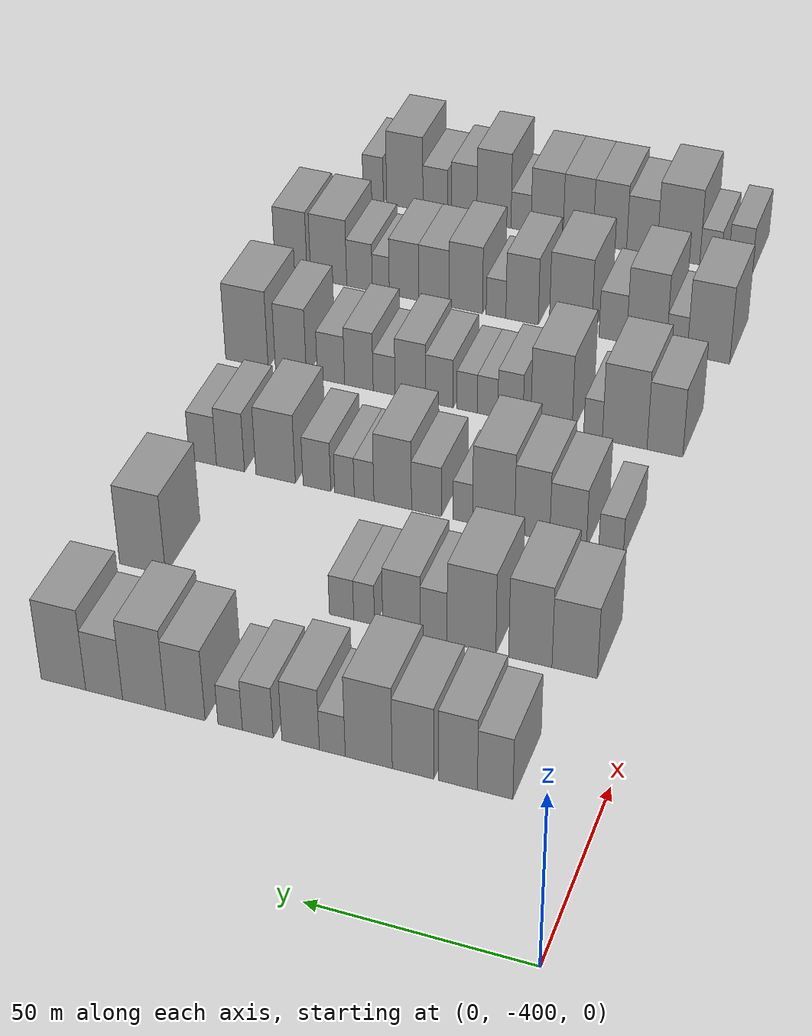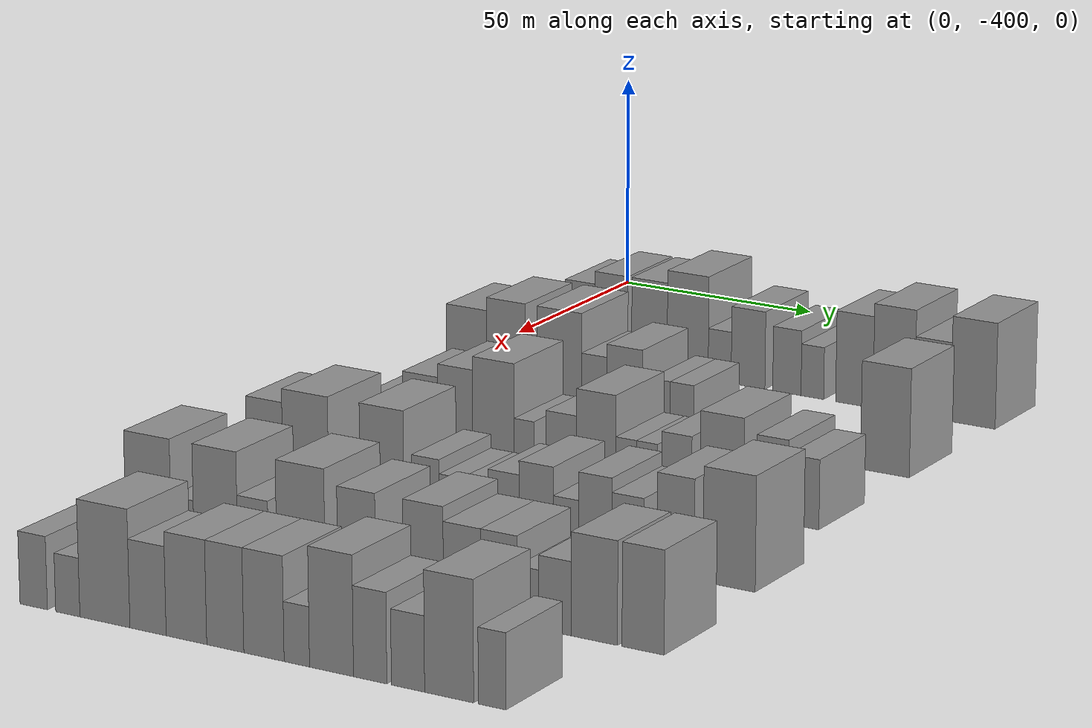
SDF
<sdf version="1.6">
 <world name="default">
  <model name="building_29">
   <static>1</static>
   <pose>50.0000 -377.5386 0 0.000000 0.000000 0.000000</pose>
   <link name="link">
    <pose>0 0 9.00 0 0 0</pose>
    <collision name="collision"><geometry><box><size>20.0000 7.8305 18.0000</size></box></geometry></collision>
    <visual name="visual">
     <cast_shadows>0</cast_shadows>
     <geometry><box><size>20.0000 7.8305 18.0000</size></box></geometry>
     <material>
      <script>
       <uri>model://grey_wall/materials/scripts</uri>
       <uri>model://grey_wall/materials/textures</uri>
       <name>vrc/grey_wall</name>
      </script>
     </material>
    </visual>
   </link>
  </model>
  <model name="building_30">
   <static>1</static>
   <pose>50.0000 -369.2636 0 0.000000 0.000000 0.000000</pose>
   <link name="link">
    <pose>0 0 10.50 0 0 0</pose>
    <collision name="collision"><geometry><box><size>20.0000 8.7196 21.0000</size></box></geometry></collision>
    <visual name="visual">
     <cast_shadows>0</cast_shadows>
     <geometry><box><size>20.0000 8.7196 21.0000</size></box></geometry>
     <material>
      <script>
       <uri>model://grey_wall/materials/scripts</uri>
       <uri>model://grey_wall/materials/textures</uri>
       <name>vrc/grey_wall</name>
      </script>
     </material>
    </visual>
   </link>
  </model>
  <model name="building_31">
   <static>1</static>
   <pose>50.0000 -359.2427 0 0.000000 0.000000 0.000000</pose>
   <link name="link">
    <pose>0 0 10.50 0 0 0</pose>
    <collision name="collision"><geometry><box><size>20.0000 9.3222 21.0000</size></box></geometry></collision>
    <visual name="visual">
     <cast_shadows>0</cast_shadows>
     <geometry><box><size>20.0000 9.3222 21.0000</size></box></geometry>
     <material>
      <script>
       <uri>model://grey_wall/materials/scripts</uri>
       <uri>model://grey_wall/materials/textures</uri>
       <name>vrc/grey_wall</name>
      </script>
     </material>
    </visual>
   </link>
  </model>
  <model name="building_32">
   <static>1</static>
   <pose>50.0000 -349.2509 0 0.000000 0.000000 0.000000</pose>
   <link name="link">
    <pose>0 0 12.00 0 0 0</pose>
    <collision name="collision"><geometry><box><size>20.0000 10.6614 24.0000</size></box></geometry></collision>
    <visual name="visual">
     <cast_shadows>0</cast_shadows>
     <geometry><box><size>20.0000 10.6614 24.0000</size></box></geometry>
     <material>
      <script>
       <uri>model://grey_wall/materials/scripts</uri>
       <uri>model://grey_wall/materials/textures</uri>
       <name>vrc/grey_wall</name>
      </script>
     </material>
    </visual>
   </link>
  </model>
  <model name="building_33">
   <static>1</static>
   <pose>50.0000 -340.9512 0 0.000000 0.000000 0.000000</pose>
   <link name="link">
    <pose>0 0 6.00 0 0 0</pose>
    <collision name="collision"><geometry><box><size>20.0000 5.9378 12.0000</size></box></geometry></collision>
    <visual name="visual">
     <cast_shadows>0</cast_shadows>
     <geometry><box><size>20.0000 5.9378 12.0000</size></box></geometry>
     <material>
      <script>
       <uri>model://grey_wall/materials/scripts</uri>
       <uri>model://grey_wall/materials/textures</uri>
       <name>vrc/grey_wall</name>
      </script>
     </material>
    </visual>
   </link>
  </model>
  <model name="building_34">
   <static>1</static>
   <pose>50.0000 -333.6593 0 0.000000 0.000000 0.000000</pose>
   <link name="link">
    <pose>0 0 9.00 0 0 0</pose>
    <collision name="collision"><geometry><box><size>20.0000 8.6461 18.0000</size></box></geometry></collision>
    <visual name="visual">
     <cast_shadows>0</cast_shadows>
     <geometry><box><size>20.0000 8.6461 18.0000</size></box></geometry>
     <material>
      <script>
       <uri>model://grey_wall/materials/scripts</uri>
       <uri>model://grey_wall/materials/textures</uri>
       <name>vrc/grey_wall</name>
      </script>
     </material>
    </visual>
   </link>
  </model>
  <model name="building_35">
   <static>1</static>
   <pose>50.0000 -323.7536 0 0.000000 0.000000 0.000000</pose>
   <link name="link">
    <pose>0 0 7.50 0 0 0</pose>
    <collision name="collision"><geometry><box><size>20.0000 7.1653 15.0000</size></box></geometry></collision>
    <visual name="visual">
     <cast_shadows>0</cast_shadows>
     <geometry><box><size>20.0000 7.1653 15.0000</size></box></geometry>
     <material>
      <script>
       <uri>model://grey_wall/materials/scripts</uri>
       <uri>model://grey_wall/materials/textures</uri>
       <name>vrc/grey_wall</name>
      </script>
     </material>
    </visual>
   </link>
  </model>
  <model name="building_36">
   <static>1</static>
   <pose>50.0000 -317.3098 0 0.000000 0.000000 0.000000</pose>
   <link name="link">
    <pose>0 0 6.00 0 0 0</pose>
    <collision name="collision"><geometry><box><size>20.0000 5.7222 12.0000</size></box></geometry></collision>
    <visual name="visual">
     <cast_shadows>0</cast_shadows>
     <geometry><box><size>20.0000 5.7222 12.0000</size></box></geometry>
     <material>
      <script>
       <uri>model://grey_wall/materials/scripts</uri>
       <uri>model://grey_wall/materials/textures</uri>
       <name>vrc/grey_wall</name>
      </script>
     </material>
    </visual>
   </link>
  </model>
  <model name="building_37">
   <static>1</static>
   <pose>50.0000 -306.7887 0 0.000000 0.000000 0.000000</pose>
   <link name="link">
    <pose>0 0 10.50 0 0 0</pose>
    <collision name="collision"><geometry><box><size>20.0000 9.3200 21.0000</size></box></geometry></collision>
    <visual name="visual">
     <cast_shadows>0</cast_shadows>
     <geometry><box><size>20.0000 9.3200 21.0000</size></box></geometry>
     <material>
      <script>
       <uri>model://grey_wall/materials/scripts</uri>
       <uri>model://grey_wall/materials/textures</uri>
       <name>vrc/grey_wall</name>
      </script>
     </material>
    </visual>
   </link>
  </model>
  <model name="building_38">
   <static>1</static>
   <pose>50.0000 -296.9839 0 0.000000 0.000000 0.000000</pose>
   <link name="link">
    <pose>0 0 12.00 0 0 0</pose>
    <collision name="collision"><geometry><box><size>20.0000 10.2897 24.0000</size></box></geometry></collision>
    <visual name="visual">
     <cast_shadows>0</cast_shadows>
     <geometry><box><size>20.0000 10.2897 24.0000</size></box></geometry>
     <material>
      <script>
       <uri>model://grey_wall/materials/scripts</uri>
       <uri>model://grey_wall/materials/textures</uri>
       <name>vrc/grey_wall</name>
      </script>
     </material>
    </visual>
   </link>
  </model>
  <model name="building_39">
   <static>1</static>
   <pose>50.0000 -287.4079 0 0.000000 0.000000 0.000000</pose>
   <link name="link">
    <pose>0 0 9.00 0 0 0</pose>
    <collision name="collision"><geometry><box><size>20.0000 8.8624 18.0000</size></box></geometry></collision>
    <visual name="visual">
     <cast_shadows>0</cast_shadows>
     <geometry><box><size>20.0000 8.8624 18.0000</size></box></geometry>
     <material>
      <script>
       <uri>model://grey_wall/materials/scripts</uri>
       <uri>model://grey_wall/materials/textures</uri>
       <name>vrc/grey_wall</name>
      </script>
     </material>
    </visual>
   </link>
  </model>
  <model name="building_40">
   <static>1</static>
   <pose>50.0000 -277.5748 0 0.000000 0.000000 0.000000</pose>
   <link name="link">
    <pose>0 0 12.00 0 0 0</pose>
    <collision name="collision"><geometry><box><size>20.0000 10.8038 24.0000</size></box></geometry></collision>
    <visual name="visual">
     <cast_shadows>0</cast_shadows>
     <geometry><box><size>20.0000 10.8038 24.0000</size></box></geometry>
     <material>
      <script>
       <uri>model://grey_wall/materials/scripts</uri>
       <uri>model://grey_wall/materials/textures</uri>
       <name>vrc/grey_wall</name>
      </script>
     </material>
    </visual>
   </link>
  </model>
  <model name="building_172">
   <static>1</static>
   <pose>90.0000 -382.9959 0 0.000000 0.000000 0.000000</pose>
   <link name="link">
    <pose>0 0 10.50 0 0 0</pose>
    <collision name="collision"><geometry><box><size>20.0000 10.4890 21.0000</size></box></geometry></collision>
    <visual name="visual">
     <cast_shadows>0</cast_shadows>
     <geometry><box><size>20.0000 10.4890 21.0000</size></box></geometry>
     <material>
      <script>
       <uri>model://grey_wall/materials/scripts</uri>
       <uri>model://grey_wall/materials/textures</uri>
       <name>vrc/grey_wall</name>
      </script>
     </material>
    </visual>
   </link>
  </model>
  <model name="building_173">
   <static>1</static>
   <pose>90.0000 -372.7026 0 0.000000 0.000000 0.000000</pose>
   <link name="link">
    <pose>0 0 12.00 0 0 0</pose>
    <collision name="collision"><geometry><box><size>20.0000 10.0975 24.0000</size></box></geometry></collision>
    <visual name="visual">
     <cast_shadows>0</cast_shadows>
     <geometry><box><size>20.0000 10.0975 24.0000</size></box></geometry>
     <material>
      <script>
       <uri>model://grey_wall/materials/scripts</uri>
       <uri>model://grey_wall/materials/textures</uri>
       <name>vrc/grey_wall</name>
      </script>
     </material>
    </visual>
   </link>
  </model>
  <model name="building_174">
   <static>1</static>
   <pose>90.0000 -358.9233 0 0.000000 0.000000 0.000000</pose>
   <link name="link">
    <pose>0 0 12.00 0 0 0</pose>
    <collision name="collision"><geometry><box><size>20.0000 11.4611 24.0000</size></box></geometry></collision>
    <visual name="visual">
     <cast_shadows>0</cast_shadows>
     <geometry><box><size>20.0000 11.4611 24.0000</size></box></geometry>
     <material>
      <script>
       <uri>model://grey_wall/materials/scripts</uri>
       <uri>model://grey_wall/materials/textures</uri>
       <name>vrc/grey_wall</name>
      </script>
     </material>
    </visual>
   </link>
  </model>
  <model name="building_175">
   <static>1</static>
   <pose>90.0000 -349.9924 0 0.000000 0.000000 0.000000</pose>
   <link name="link">
    <pose>0 0 7.50 0 0 0</pose>
    <collision name="collision"><geometry><box><size>20.0000 6.4006 15.0000</size></box></geometry></collision>
    <visual name="visual">
     <cast_shadows>0</cast_shadows>
     <geometry><box><size>20.0000 6.4006 15.0000</size></box></geometry>
     <material>
      <script>
       <uri>model://grey_wall/materials/scripts</uri>
       <uri>model://grey_wall/materials/textures</uri>
       <name>vrc/grey_wall</name>
      </script>
     </material>
    </visual>
   </link>
  </model>
  <model name="building_176">
   <static>1</static>
   <pose>90.0000 -342.3059 0 0.000000 0.000000 0.000000</pose>
   <link name="link">
    <pose>0 0 9.00 0 0 0</pose>
    <collision name="collision"><geometry><box><size>20.0000 8.9725 18.0000</size></box></geometry></collision>
    <visual name="visual">
     <cast_shadows>0</cast_shadows>
     <geometry><box><size>20.0000 8.9725 18.0000</size></box></geometry>
     <material>
      <script>
       <uri>model://grey_wall/materials/scripts</uri>
       <uri>model://grey_wall/materials/textures</uri>
       <name>vrc/grey_wall</name>
      </script>
     </material>
    </visual>
   </link>
  </model>
  <model name="building_177">
   <static>1</static>
   <pose>90.0000 -333.3131 0 0.000000 0.000000 0.000000</pose>
   <link name="link">
    <pose>0 0 6.00 0 0 0</pose>
    <collision name="collision"><geometry><box><size>20.0000 5.0131 12.0000</size></box></geometry></collision>
    <visual name="visual">
     <cast_shadows>0</cast_shadows>
     <geometry><box><size>20.0000 5.0131 12.0000</size></box></geometry>
     <material>
      <script>
       <uri>model://grey_wall/materials/scripts</uri>
       <uri>model://grey_wall/materials/textures</uri>
       <name>vrc/grey_wall</name>
      </script>
     </material>
    </visual>
   </link>
  </model>
  <model name="building_178">
   <static>1</static>
   <pose>90.0000 -327.8650 0 0.000000 0.000000 0.000000</pose>
   <link name="link">
    <pose>0 0 6.00 0 0 0</pose>
    <collision name="collision"><geometry><box><size>20.0000 5.8831 12.0000</size></box></geometry></collision>
    <visual name="visual">
     <cast_shadows>0</cast_shadows>
     <geometry><box><size>20.0000 5.8831 12.0000</size></box></geometry>
     <material>
      <script>
       <uri>model://grey_wall/materials/scripts</uri>
       <uri>model://grey_wall/materials/textures</uri>
       <name>vrc/grey_wall</name>
      </script>
     </material>
    </visual>
   </link>
  </model>
  <model name="building_179">
   <static>1</static>
   <pose>90.0000 -278.4819 0 0.000000 0.000000 0.000000</pose>
   <link name="link">
    <pose>0 0 12.00 0 0 0</pose>
    <collision name="collision"><geometry><box><size>20.0000 11.6277 24.0000</size></box></geometry></collision>
    <visual name="visual">
     <cast_shadows>0</cast_shadows>
     <geometry><box><size>20.0000 11.6277 24.0000</size></box></geometry>
     <material>
      <script>
       <uri>model://grey_wall/materials/scripts</uri>
       <uri>model://grey_wall/materials/textures</uri>
       <name>vrc/grey_wall</name>
      </script>
     </material>
    </visual>
   </link>
  </model>
  <model name="building_308">
   <static>1</static>
   <pose>130.0000 -379.8751 0 0.000000 0.000000 0.000000</pose>
   <link name="link">
    <pose>0 0 6.00 0 0 0</pose>
    <collision name="collision"><geometry><box><size>20.0000 5.9608 12.0000</size></box></geometry></collision>
    <visual name="visual">
     <cast_shadows>0</cast_shadows>
     <geometry><box><size>20.0000 5.9608 12.0000</size></box></geometry>
     <material>
      <script>
       <uri>model://grey_wall/materials/scripts</uri>
       <uri>model://grey_wall/materials/textures</uri>
       <name>vrc/grey_wall</name>
      </script>
     </material>
    </visual>
   </link>
  </model>
  <model name="building_309">
   <static>1</static>
   <pose>130.0000 -369.4111 0 0.000000 0.000000 0.000000</pose>
   <link name="link">
    <pose>0 0 9.00 0 0 0</pose>
    <collision name="collision"><geometry><box><size>20.0000 8.9671 18.0000</size></box></geometry></collision>
    <visual name="visual">
     <cast_shadows>0</cast_shadows>
     <geometry><box><size>20.0000 8.9671 18.0000</size></box></geometry>
     <material>
      <script>
       <uri>model://grey_wall/materials/scripts</uri>
       <uri>model://grey_wall/materials/textures</uri>
       <name>vrc/grey_wall</name>
      </script>
     </material>
    </visual>
   </link>
  </model>
  <model name="building_310">
   <static>1</static>
   <pose>130.0000 -360.5963 0 0.000000 0.000000 0.000000</pose>
   <link name="link">
    <pose>0 0 10.50 0 0 0</pose>
    <collision name="collision"><geometry><box><size>20.0000 8.6624 21.0000</size></box></geometry></collision>
    <visual name="visual">
     <cast_shadows>0</cast_shadows>
     <geometry><box><size>20.0000 8.6624 21.0000</size></box></geometry>
     <material>
      <script>
       <uri>model://grey_wall/materials/scripts</uri>
       <uri>model://grey_wall/materials/textures</uri>
       <name>vrc/grey_wall</name>
      </script>
     </material>
    </visual>
   </link>
  </model>
  <model name="building_311">
   <static>1</static>
   <pose>130.0000 -351.0551 0 0.000000 0.000000 0.000000</pose>
   <link name="link">
    <pose>0 0 12.00 0 0 0</pose>
    <collision name="collision"><geometry><box><size>20.0000 10.4200 24.0000</size></box></geometry></collision>
    <visual name="visual">
     <cast_shadows>0</cast_shadows>
     <geometry><box><size>20.0000 10.4200 24.0000</size></box></geometry>
     <material>
      <script>
       <uri>model://grey_wall/materials/scripts</uri>
       <uri>model://grey_wall/materials/textures</uri>
       <name>vrc/grey_wall</name>
      </script>
     </material>
    </visual>
   </link>
  </model>
  <model name="building_312">
   <static>1</static>
   <pose>130.0000 -343.4131 0 0.000000 0.000000 0.000000</pose>
   <link name="link">
    <pose>0 0 6.00 0 0 0</pose>
    <collision name="collision"><geometry><box><size>20.0000 4.8642 12.0000</size></box></geometry></collision>
    <visual name="visual">
     <cast_shadows>0</cast_shadows>
     <geometry><box><size>20.0000 4.8642 12.0000</size></box></geometry>
     <material>
      <script>
       <uri>model://grey_wall/materials/scripts</uri>
       <uri>model://grey_wall/materials/textures</uri>
       <name>vrc/grey_wall</name>
      </script>
     </material>
    </visual>
   </link>
  </model>
  <model name="building_313">
   <static>1</static>
   <pose>130.0000 -334.2361 0 0.000000 0.000000 0.000000</pose>
   <link name="link">
    <pose>0 0 7.50 0 0 0</pose>
    <collision name="collision"><geometry><box><size>20.0000 7.4897 15.0000</size></box></geometry></collision>
    <visual name="visual">
     <cast_shadows>0</cast_shadows>
     <geometry><box><size>20.0000 7.4897 15.0000</size></box></geometry>
     <material>
      <script>
       <uri>model://grey_wall/materials/scripts</uri>
       <uri>model://grey_wall/materials/textures</uri>
       <name>vrc/grey_wall</name>
      </script>
     </material>
    </visual>
   </link>
  </model>
  <model name="building_314">
   <static>1</static>
   <pose>130.0000 -325.7147 0 0.000000 0.000000 0.000000</pose>
   <link name="link">
    <pose>0 0 10.50 0 0 0</pose>
    <collision name="collision"><geometry><box><size>20.0000 9.5531 21.0000</size></box></geometry></collision>
    <visual name="visual">
     <cast_shadows>0</cast_shadows>
     <geometry><box><size>20.0000 9.5531 21.0000</size></box></geometry>
     <material>
      <script>
       <uri>model://grey_wall/materials/scripts</uri>
       <uri>model://grey_wall/materials/textures</uri>
       <name>vrc/grey_wall</name>
      </script>
     </material>
    </visual>
   </link>
  </model>
  <model name="building_315">
   <static>1</static>
   <pose>130.0000 -318.4172 0 0.000000 0.000000 0.000000</pose>
   <link name="link">
    <pose>0 0 6.00 0 0 0</pose>
    <collision name="collision"><geometry><box><size>20.0000 5.0419 12.0000</size></box></geometry></collision>
    <visual name="visual">
     <cast_shadows>0</cast_shadows>
     <geometry><box><size>20.0000 5.0419 12.0000</size></box></geometry>
     <material>
      <script>
       <uri>model://grey_wall/materials/scripts</uri>
       <uri>model://grey_wall/materials/textures</uri>
       <name>vrc/grey_wall</name>
      </script>
     </material>
    </visual>
   </link>
  </model>
  <model name="building_316">
   <static>1</static>
   <pose>130.0000 -313.3897 0 0.000000 0.000000 0.000000</pose>
   <link name="link">
    <pose>0 0 6.00 0 0 0</pose>
    <collision name="collision"><geometry><box><size>20.0000 5.0132 12.0000</size></box></geometry></collision>
    <visual name="visual">
     <cast_shadows>0</cast_shadows>
     <geometry><box><size>20.0000 5.0132 12.0000</size></box></geometry>
     <material>
      <script>
       <uri>model://grey_wall/materials/scripts</uri>
       <uri>model://grey_wall/materials/textures</uri>
       <name>vrc/grey_wall</name>
      </script>
     </material>
    </visual>
   </link>
  </model>
  <model name="building_317">
   <static>1</static>
   <pose>130.0000 -306.3028 0 0.000000 0.000000 0.000000</pose>
   <link name="link">
    <pose>0 0 7.50 0 0 0</pose>
    <collision name="collision"><geometry><box><size>20.0000 7.1605 15.0000</size></box></geometry></collision>
    <visual name="visual">
     <cast_shadows>0</cast_shadows>
     <geometry><box><size>20.0000 7.1605 15.0000</size></box></geometry>
     <material>
      <script>
       <uri>model://grey_wall/materials/scripts</uri>
       <uri>model://grey_wall/materials/textures</uri>
       <name>vrc/grey_wall</name>
      </script>
     </material>
    </visual>
   </link>
  </model>
  <model name="building_318">
   <static>1</static>
   <pose>130.0000 -295.5775 0 0.000000 0.000000 0.000000</pose>
   <link name="link">
    <pose>0 0 10.50 0 0 0</pose>
    <collision name="collision"><geometry><box><size>20.0000 10.2901 21.0000</size></box></geometry></collision>
    <visual name="visual">
     <cast_shadows>0</cast_shadows>
     <geometry><box><size>20.0000 10.2901 21.0000</size></box></geometry>
     <material>
      <script>
       <uri>model://grey_wall/materials/scripts</uri>
       <uri>model://grey_wall/materials/textures</uri>
       <name>vrc/grey_wall</name>
      </script>
     </material>
    </visual>
   </link>
  </model>
  <model name="building_319">
   <static>1</static>
   <pose>130.0000 -283.7411 0 0.000000 0.000000 0.000000</pose>
   <link name="link">
    <pose>0 0 9.00 0 0 0</pose>
    <collision name="collision"><geometry><box><size>20.0000 7.3829 18.0000</size></box></geometry></collision>
    <visual name="visual">
     <cast_shadows>0</cast_shadows>
     <geometry><box><size>20.0000 7.3829 18.0000</size></box></geometry>
     <material>
      <script>
       <uri>model://grey_wall/materials/scripts</uri>
       <uri>model://grey_wall/materials/textures</uri>
       <name>vrc/grey_wall</name>
      </script>
     </material>
    </visual>
   </link>
  </model>
  <model name="building_320">
   <static>1</static>
   <pose>130.0000 -276.4550 0 0.000000 0.000000 0.000000</pose>
   <link name="link">
    <pose>0 0 7.50 0 0 0</pose>
    <collision name="collision"><geometry><box><size>20.0000 7.1892 15.0000</size></box></geometry></collision>
    <visual name="visual">
     <cast_shadows>0</cast_shadows>
     <geometry><box><size>20.0000 7.1892 15.0000</size></box></geometry>
     <material>
      <script>
       <uri>model://grey_wall/materials/scripts</uri>
       <uri>model://grey_wall/materials/textures</uri>
       <name>vrc/grey_wall</name>
      </script>
     </material>
    </visual>
   </link>
  </model>
  <model name="building_446">
   <static>1</static>
   <pose>170.0000 -382.1659 0 0.000000 0.000000 0.000000</pose>
   <link name="link">
    <pose>0 0 10.50 0 0 0</pose>
    <collision name="collision"><geometry><box><size>20.0000 9.0791 21.0000</size></box></geometry></collision>
    <visual name="visual">
     <cast_shadows>0</cast_shadows>
     <geometry><box><size>20.0000 9.0791 21.0000</size></box></geometry>
     <material>
      <script>
       <uri>model://grey_wall/materials/scripts</uri>
       <uri>model://grey_wall/materials/textures</uri>
       <name>vrc/grey_wall</name>
      </script>
     </material>
    </visual>
   </link>
  </model>
  <model name="building_447">
   <static>1</static>
   <pose>170.0000 -371.9200 0 0.000000 0.000000 0.000000</pose>
   <link name="link">
    <pose>0 0 12.00 0 0 0</pose>
    <collision name="collision"><geometry><box><size>20.0000 11.4127 24.0000</size></box></geometry></collision>
    <visual name="visual">
     <cast_shadows>0</cast_shadows>
     <geometry><box><size>20.0000 11.4127 24.0000</size></box></geometry>
     <material>
      <script>
       <uri>model://grey_wall/materials/scripts</uri>
       <uri>model://grey_wall/materials/textures</uri>
       <name>vrc/grey_wall</name>
      </script>
     </material>
    </visual>
   </link>
  </model>
  <model name="building_448">
   <static>1</static>
   <pose>170.0000 -363.8134 0 0.000000 0.000000 0.000000</pose>
   <link name="link">
    <pose>0 0 6.00 0 0 0</pose>
    <collision name="collision"><geometry><box><size>20.0000 4.8006 12.0000</size></box></geometry></collision>
    <visual name="visual">
     <cast_shadows>0</cast_shadows>
     <geometry><box><size>20.0000 4.8006 12.0000</size></box></geometry>
     <material>
      <script>
       <uri>model://grey_wall/materials/scripts</uri>
       <uri>model://grey_wall/materials/textures</uri>
       <name>vrc/grey_wall</name>
      </script>
     </material>
    </visual>
   </link>
  </model>
  <model name="building_449">
   <static>1</static>
   <pose>170.0000 -353.0618 0 0.000000 0.000000 0.000000</pose>
   <link name="link">
    <pose>0 0 12.00 0 0 0</pose>
    <collision name="collision"><geometry><box><size>20.0000 10.7026 24.0000</size></box></geometry></collision>
    <visual name="visual">
     <cast_shadows>0</cast_shadows>
     <geometry><box><size>20.0000 10.7026 24.0000</size></box></geometry>
     <material>
      <script>
       <uri>model://grey_wall/materials/scripts</uri>
       <uri>model://grey_wall/materials/textures</uri>
       <name>vrc/grey_wall</name>
      </script>
     </material>
    </visual>
   </link>
  </model>
  <model name="building_450">
   <static>1</static>
   <pose>170.0000 -342.4193 0 0.000000 0.000000 0.000000</pose>
   <link name="link">
    <pose>0 0 7.50 0 0 0</pose>
    <collision name="collision"><geometry><box><size>20.0000 6.5823 15.0000</size></box></geometry></collision>
    <visual name="visual">
     <cast_shadows>0</cast_shadows>
     <geometry><box><size>20.0000 6.5823 15.0000</size></box></geometry>
     <material>
      <script>
       <uri>model://grey_wall/materials/scripts</uri>
       <uri>model://grey_wall/materials/textures</uri>
       <name>vrc/grey_wall</name>
      </script>
     </material>
    </visual>
   </link>
  </model>
  <model name="building_451">
   <static>1</static>
   <pose>170.0000 -336.4174 0 0.000000 0.000000 0.000000</pose>
   <link name="link">
    <pose>0 0 6.00 0 0 0</pose>
    <collision name="collision"><geometry><box><size>20.0000 5.4215 12.0000</size></box></geometry></collision>
    <visual name="visual">
     <cast_shadows>0</cast_shadows>
     <geometry><box><size>20.0000 5.4215 12.0000</size></box></geometry>
     <material>
      <script>
       <uri>model://grey_wall/materials/scripts</uri>
       <uri>model://grey_wall/materials/textures</uri>
       <name>vrc/grey_wall</name>
      </script>
     </material>
    </visual>
   </link>
  </model>
  <model name="building_452">
   <static>1</static>
   <pose>170.0000 -331.0300 0 0.000000 0.000000 0.000000</pose>
   <link name="link">
    <pose>0 0 6.00 0 0 0</pose>
    <collision name="collision"><geometry><box><size>20.0000 5.3534 12.0000</size></box></geometry></collision>
    <visual name="visual">
     <cast_shadows>0</cast_shadows>
     <geometry><box><size>20.0000 5.3534 12.0000</size></box></geometry>
     <material>
      <script>
       <uri>model://grey_wall/materials/scripts</uri>
       <uri>model://grey_wall/materials/textures</uri>
       <name>vrc/grey_wall</name>
      </script>
     </material>
    </visual>
   </link>
  </model>
  <model name="building_453">
   <static>1</static>
   <pose>170.0000 -323.6869 0 0.000000 0.000000 0.000000</pose>
   <link name="link">
    <pose>0 0 7.50 0 0 0</pose>
    <collision name="collision"><geometry><box><size>20.0000 7.3328 15.0000</size></box></geometry></collision>
    <visual name="visual">
     <cast_shadows>0</cast_shadows>
     <geometry><box><size>20.0000 7.3328 15.0000</size></box></geometry>
     <material>
      <script>
       <uri>model://grey_wall/materials/scripts</uri>
       <uri>model://grey_wall/materials/textures</uri>
       <name>vrc/grey_wall</name>
      </script>
     </material>
    </visual>
   </link>
  </model>
  <model name="building_454">
   <static>1</static>
   <pose>170.0000 -315.9573 0 0.000000 0.000000 0.000000</pose>
   <link name="link">
    <pose>0 0 9.00 0 0 0</pose>
    <collision name="collision"><geometry><box><size>20.0000 8.1264 18.0000</size></box></geometry></collision>
    <visual name="visual">
     <cast_shadows>0</cast_shadows>
     <geometry><box><size>20.0000 8.1264 18.0000</size></box></geometry>
     <material>
      <script>
       <uri>model://grey_wall/materials/scripts</uri>
       <uri>model://grey_wall/materials/textures</uri>
       <name>vrc/grey_wall</name>
      </script>
     </material>
    </visual>
   </link>
  </model>
  <model name="building_455">
   <static>1</static>
   <pose>170.0000 -308.9433 0 0.000000 0.000000 0.000000</pose>
   <link name="link">
    <pose>0 0 6.00 0 0 0</pose>
    <collision name="collision"><geometry><box><size>20.0000 5.9016 12.0000</size></box></geometry></collision>
    <visual name="visual">
     <cast_shadows>0</cast_shadows>
     <geometry><box><size>20.0000 5.9016 12.0000</size></box></geometry>
     <material>
      <script>
       <uri>model://grey_wall/materials/scripts</uri>
       <uri>model://grey_wall/materials/textures</uri>
       <name>vrc/grey_wall</name>
      </script>
     </material>
    </visual>
   </link>
  </model>
  <model name="building_456">
   <static>1</static>
   <pose>170.0000 -302.1447 0 0.000000 0.000000 0.000000</pose>
   <link name="link">
    <pose>0 0 9.00 0 0 0</pose>
    <collision name="collision"><geometry><box><size>20.0000 7.6956 18.0000</size></box></geometry></collision>
    <visual name="visual">
     <cast_shadows>0</cast_shadows>
     <geometry><box><size>20.0000 7.6956 18.0000</size></box></geometry>
     <material>
      <script>
       <uri>model://grey_wall/materials/scripts</uri>
       <uri>model://grey_wall/materials/textures</uri>
       <name>vrc/grey_wall</name>
      </script>
     </material>
    </visual>
   </link>
  </model>
  <model name="building_457">
   <static>1</static>
   <pose>170.0000 -294.5818 0 0.000000 0.000000 0.000000</pose>
   <link name="link">
    <pose>0 0 7.50 0 0 0</pose>
    <collision name="collision"><geometry><box><size>20.0000 7.4301 15.0000</size></box></geometry></collision>
    <visual name="visual">
     <cast_shadows>0</cast_shadows>
     <geometry><box><size>20.0000 7.4301 15.0000</size></box></geometry>
     <material>
      <script>
       <uri>model://grey_wall/materials/scripts</uri>
       <uri>model://grey_wall/materials/textures</uri>
       <name>vrc/grey_wall</name>
      </script>
     </material>
    </visual>
   </link>
  </model>
  <model name="building_458">
   <static>1</static>
   <pose>170.0000 -283.6159 0 0.000000 0.000000 0.000000</pose>
   <link name="link">
    <pose>0 0 10.50 0 0 0</pose>
    <collision name="collision"><geometry><box><size>20.0000 8.5017 21.0000</size></box></geometry></collision>
    <visual name="visual">
     <cast_shadows>0</cast_shadows>
     <geometry><box><size>20.0000 8.5017 21.0000</size></box></geometry>
     <material>
      <script>
       <uri>model://grey_wall/materials/scripts</uri>
       <uri>model://grey_wall/materials/textures</uri>
       <name>vrc/grey_wall</name>
      </script>
     </material>
    </visual>
   </link>
  </model>
  <model name="building_459">
   <static>1</static>
   <pose>170.0000 -271.4887 0 0.000000 0.000000 0.000000</pose>
   <link name="link">
    <pose>0 0 12.00 0 0 0</pose>
    <collision name="collision"><geometry><box><size>20.0000 11.7528 24.0000</size></box></geometry></collision>
    <visual name="visual">
     <cast_shadows>0</cast_shadows>
     <geometry><box><size>20.0000 11.7528 24.0000</size></box></geometry>
     <material>
      <script>
       <uri>model://grey_wall/materials/scripts</uri>
       <uri>model://grey_wall/materials/textures</uri>
       <name>vrc/grey_wall</name>
      </script>
     </material>
    </visual>
   </link>
  </model>
  <model name="building_575">
   <static>1</static>
   <pose>210.0000 -382.9763 0 0.000000 0.000000 0.000000</pose>
   <link name="link">
    <pose>0 0 12.00 0 0 0</pose>
    <collision name="collision"><geometry><box><size>20.0000 11.2555 24.0000</size></box></geometry></collision>
    <visual name="visual">
     <cast_shadows>0</cast_shadows>
     <geometry><box><size>20.0000 11.2555 24.0000</size></box></geometry>
     <material>
      <script>
       <uri>model://grey_wall/materials/scripts</uri>
       <uri>model://grey_wall/materials/textures</uri>
       <name>vrc/grey_wall</name>
      </script>
     </material>
    </visual>
   </link>
  </model>
  <model name="building_576">
   <static>1</static>
   <pose>210.0000 -374.5770 0 0.000000 0.000000 0.000000</pose>
   <link name="link">
    <pose>0 0 6.00 0 0 0</pose>
    <collision name="collision"><geometry><box><size>20.0000 5.5431 12.0000</size></box></geometry></collision>
    <visual name="visual">
     <cast_shadows>0</cast_shadows>
     <geometry><box><size>20.0000 5.5431 12.0000</size></box></geometry>
     <material>
      <script>
       <uri>model://grey_wall/materials/scripts</uri>
       <uri>model://grey_wall/materials/textures</uri>
       <name>vrc/grey_wall</name>
      </script>
     </material>
    </visual>
   </link>
  </model>
  <model name="building_577">
   <static>1</static>
   <pose>210.0000 -366.4827 0 0.000000 0.000000 0.000000</pose>
   <link name="link">
    <pose>0 0 12.00 0 0 0</pose>
    <collision name="collision"><geometry><box><size>20.0000 10.6455 24.0000</size></box></geometry></collision>
    <visual name="visual">
     <cast_shadows>0</cast_shadows>
     <geometry><box><size>20.0000 10.6455 24.0000</size></box></geometry>
     <material>
      <script>
       <uri>model://grey_wall/materials/scripts</uri>
       <uri>model://grey_wall/materials/textures</uri>
       <name>vrc/grey_wall</name>
      </script>
     </material>
    </visual>
   </link>
  </model>
  <model name="building_578">
   <static>1</static>
   <pose>210.0000 -357.4455 0 0.000000 0.000000 0.000000</pose>
   <link name="link">
    <pose>0 0 7.50 0 0 0</pose>
    <collision name="collision"><geometry><box><size>20.0000 7.4289 15.0000</size></box></geometry></collision>
    <visual name="visual">
     <cast_shadows>0</cast_shadows>
     <geometry><box><size>20.0000 7.4289 15.0000</size></box></geometry>
     <material>
      <script>
       <uri>model://grey_wall/materials/scripts</uri>
       <uri>model://grey_wall/materials/textures</uri>
       <name>vrc/grey_wall</name>
      </script>
     </material>
    </visual>
   </link>
  </model>
  <model name="building_579">
   <static>1</static>
   <pose>210.0000 -345.9768 0 0.000000 0.000000 0.000000</pose>
   <link name="link">
    <pose>0 0 12.00 0 0 0</pose>
    <collision name="collision"><geometry><box><size>20.0000 11.5086 24.0000</size></box></geometry></collision>
    <visual name="visual">
     <cast_shadows>0</cast_shadows>
     <geometry><box><size>20.0000 11.5086 24.0000</size></box></geometry>
     <material>
      <script>
       <uri>model://grey_wall/materials/scripts</uri>
       <uri>model://grey_wall/materials/textures</uri>
       <name>vrc/grey_wall</name>
      </script>
     </material>
    </visual>
   </link>
  </model>
  <model name="building_580">
   <static>1</static>
   <pose>210.0000 -332.7795 0 0.000000 0.000000 0.000000</pose>
   <link name="link">
    <pose>0 0 10.50 0 0 0</pose>
    <collision name="collision"><geometry><box><size>20.0000 8.8860 21.0000</size></box></geometry></collision>
    <visual name="visual">
     <cast_shadows>0</cast_shadows>
     <geometry><box><size>20.0000 8.8860 21.0000</size></box></geometry>
     <material>
      <script>
       <uri>model://grey_wall/materials/scripts</uri>
       <uri>model://grey_wall/materials/textures</uri>
       <name>vrc/grey_wall</name>
      </script>
     </material>
    </visual>
   </link>
  </model>
  <model name="building_581">
   <static>1</static>
   <pose>210.0000 -325.6138 0 0.000000 0.000000 0.000000</pose>
   <link name="link">
    <pose>0 0 6.00 0 0 0</pose>
    <collision name="collision"><geometry><box><size>20.0000 5.4454 12.0000</size></box></geometry></collision>
    <visual name="visual">
     <cast_shadows>0</cast_shadows>
     <geometry><box><size>20.0000 5.4454 12.0000</size></box></geometry>
     <material>
      <script>
       <uri>model://grey_wall/materials/scripts</uri>
       <uri>model://grey_wall/materials/textures</uri>
       <name>vrc/grey_wall</name>
      </script>
     </material>
    </visual>
   </link>
  </model>
  <model name="building_582">
   <static>1</static>
   <pose>210.0000 -317.2427 0 0.000000 0.000000 0.000000</pose>
   <link name="link">
    <pose>0 0 10.50 0 0 0</pose>
    <collision name="collision"><geometry><box><size>20.0000 9.2969 21.0000</size></box></geometry></collision>
    <visual name="visual">
     <cast_shadows>0</cast_shadows>
     <geometry><box><size>20.0000 9.2969 21.0000</size></box></geometry>
     <material>
      <script>
       <uri>model://grey_wall/materials/scripts</uri>
       <uri>model://grey_wall/materials/textures</uri>
       <name>vrc/grey_wall</name>
      </script>
     </material>
    </visual>
   </link>
  </model>
  <model name="building_583">
   <static>1</static>
   <pose>210.0000 -308.3418 0 0.000000 0.000000 0.000000</pose>
   <link name="link">
    <pose>0 0 9.00 0 0 0</pose>
    <collision name="collision"><geometry><box><size>20.0000 8.5048 18.0000</size></box></geometry></collision>
    <visual name="visual">
     <cast_shadows>0</cast_shadows>
     <geometry><box><size>20.0000 8.5048 18.0000</size></box></geometry>
     <material>
      <script>
       <uri>model://grey_wall/materials/scripts</uri>
       <uri>model://grey_wall/materials/textures</uri>
       <name>vrc/grey_wall</name>
      </script>
     </material>
    </visual>
   </link>
  </model>
  <model name="building_584">
   <static>1</static>
   <pose>210.0000 -299.9465 0 0.000000 0.000000 0.000000</pose>
   <link name="link">
    <pose>0 0 9.00 0 0 0</pose>
    <collision name="collision"><geometry><box><size>20.0000 8.2858 18.0000</size></box></geometry></collision>
    <visual name="visual">
     <cast_shadows>0</cast_shadows>
     <geometry><box><size>20.0000 8.2858 18.0000</size></box></geometry>
     <material>
      <script>
       <uri>model://grey_wall/materials/scripts</uri>
       <uri>model://grey_wall/materials/textures</uri>
       <name>vrc/grey_wall</name>
      </script>
     </material>
    </visual>
   </link>
  </model>
  <model name="building_585">
   <static>1</static>
   <pose>210.0000 -293.3977 0 0.000000 0.000000 0.000000</pose>
   <link name="link">
    <pose>0 0 6.00 0 0 0</pose>
    <collision name="collision"><geometry><box><size>20.0000 4.8119 12.0000</size></box></geometry></collision>
    <visual name="visual">
     <cast_shadows>0</cast_shadows>
     <geometry><box><size>20.0000 4.8119 12.0000</size></box></geometry>
     <material>
      <script>
       <uri>model://grey_wall/materials/scripts</uri>
       <uri>model://grey_wall/materials/textures</uri>
       <name>vrc/grey_wall</name>
      </script>
     </material>
    </visual>
   </link>
  </model>
  <model name="building_586">
   <static>1</static>
   <pose>210.0000 -287.3549 0 0.000000 0.000000 0.000000</pose>
   <link name="link">
    <pose>0 0 7.50 0 0 0</pose>
    <collision name="collision"><geometry><box><size>20.0000 7.2735 15.0000</size></box></geometry></collision>
    <visual name="visual">
     <cast_shadows>0</cast_shadows>
     <geometry><box><size>20.0000 7.2735 15.0000</size></box></geometry>
     <material>
      <script>
       <uri>model://grey_wall/materials/scripts</uri>
       <uri>model://grey_wall/materials/textures</uri>
       <name>vrc/grey_wall</name>
      </script>
     </material>
    </visual>
   </link>
  </model>
  <model name="building_587">
   <static>1</static>
   <pose>210.0000 -278.5592 0 0.000000 0.000000 0.000000</pose>
   <link name="link">
    <pose>0 0 10.50 0 0 0</pose>
    <collision name="collision"><geometry><box><size>20.0000 10.3178 21.0000</size></box></geometry></collision>
    <visual name="visual">
     <cast_shadows>0</cast_shadows>
     <geometry><box><size>20.0000 10.3178 21.0000</size></box></geometry>
     <material>
      <script>
       <uri>model://grey_wall/materials/scripts</uri>
       <uri>model://grey_wall/materials/textures</uri>
       <name>vrc/grey_wall</name>
      </script>
     </material>
    </visual>
   </link>
  </model>
  <model name="building_588">
   <static>1</static>
   <pose>210.0000 -267.7813 0 0.000000 0.000000 0.000000</pose>
   <link name="link">
    <pose>0 0 10.50 0 0 0</pose>
    <collision name="collision"><geometry><box><size>20.0000 9.2381 21.0000</size></box></geometry></collision>
    <visual name="visual">
     <cast_shadows>0</cast_shadows>
     <geometry><box><size>20.0000 9.2381 21.0000</size></box></geometry>
     <material>
      <script>
       <uri>model://grey_wall/materials/scripts</uri>
       <uri>model://grey_wall/materials/textures</uri>
       <name>vrc/grey_wall</name>
      </script>
     </material>
    </visual>
   </link>
  </model>
  <model name="building_711">
   <static>1</static>
   <pose>250.0000 -381.5702 0 0.000000 0.000000 0.000000</pose>
   <link name="link">
    <pose>0 0 7.50 0 0 0</pose>
    <collision name="collision"><geometry><box><size>20.0000 6.6588 15.0000</size></box></geometry></collision>
    <visual name="visual">
     <cast_shadows>0</cast_shadows>
     <geometry><box><size>20.0000 6.6588 15.0000</size></box></geometry>
     <material>
      <script>
       <uri>model://grey_wall/materials/scripts</uri>
       <uri>model://grey_wall/materials/textures</uri>
       <name>vrc/grey_wall</name>
      </script>
     </material>
    </visual>
   </link>
  </model>
  <model name="building_712">
   <static>1</static>
   <pose>250.0000 -373.3294 0 0.000000 0.000000 0.000000</pose>
   <link name="link">
    <pose>0 0 6.00 0 0 0</pose>
    <collision name="collision"><geometry><box><size>20.0000 5.8227 12.0000</size></box></geometry></collision>
    <visual name="visual">
     <cast_shadows>0</cast_shadows>
     <geometry><box><size>20.0000 5.8227 12.0000</size></box></geometry>
     <material>
      <script>
       <uri>model://grey_wall/materials/scripts</uri>
       <uri>model://grey_wall/materials/textures</uri>
       <name>vrc/grey_wall</name>
      </script>
     </material>
    </visual>
   </link>
  </model>
  <model name="building_713">
   <static>1</static>
   <pose>250.0000 -364.4496 0 0.000000 0.000000 0.000000</pose>
   <link name="link">
    <pose>0 0 12.00 0 0 0</pose>
    <collision name="collision"><geometry><box><size>20.0000 11.9369 24.0000</size></box></geometry></collision>
    <visual name="visual">
     <cast_shadows>0</cast_shadows>
     <geometry><box><size>20.0000 11.9369 24.0000</size></box></geometry>
     <material>
      <script>
       <uri>model://grey_wall/materials/scripts</uri>
       <uri>model://grey_wall/materials/textures</uri>
       <name>vrc/grey_wall</name>
      </script>
     </material>
    </visual>
   </link>
  </model>
  <model name="building_714">
   <static>1</static>
   <pose>250.0000 -354.2081 0 0.000000 0.000000 0.000000</pose>
   <link name="link">
    <pose>0 0 9.00 0 0 0</pose>
    <collision name="collision"><geometry><box><size>20.0000 8.5462 18.0000</size></box></geometry></collision>
    <visual name="visual">
     <cast_shadows>0</cast_shadows>
     <geometry><box><size>20.0000 8.5462 18.0000</size></box></geometry>
     <material>
      <script>
       <uri>model://grey_wall/materials/scripts</uri>
       <uri>model://grey_wall/materials/textures</uri>
       <name>vrc/grey_wall</name>
      </script>
     </material>
    </visual>
   </link>
  </model>
  <model name="building_715">
   <static>1</static>
   <pose>250.0000 -345.1980 0 0.000000 0.000000 0.000000</pose>
   <link name="link">
    <pose>0 0 10.50 0 0 0</pose>
    <collision name="collision"><geometry><box><size>20.0000 9.4739 21.0000</size></box></geometry></collision>
    <visual name="visual">
     <cast_shadows>0</cast_shadows>
     <geometry><box><size>20.0000 9.4739 21.0000</size></box></geometry>
     <material>
      <script>
       <uri>model://grey_wall/materials/scripts</uri>
       <uri>model://grey_wall/materials/textures</uri>
       <name>vrc/grey_wall</name>
      </script>
     </material>
    </visual>
   </link>
  </model>
  <model name="building_716">
   <static>1</static>
   <pose>250.0000 -336.1735 0 0.000000 0.000000 0.000000</pose>
   <link name="link">
    <pose>0 0 10.50 0 0 0</pose>
    <collision name="collision"><geometry><box><size>20.0000 8.5753 21.0000</size></box></geometry></collision>
    <visual name="visual">
     <cast_shadows>0</cast_shadows>
     <geometry><box><size>20.0000 8.5753 21.0000</size></box></geometry>
     <material>
      <script>
       <uri>model://grey_wall/materials/scripts</uri>
       <uri>model://grey_wall/materials/textures</uri>
       <name>vrc/grey_wall</name>
      </script>
     </material>
    </visual>
   </link>
  </model>
  <model name="building_717">
   <static>1</static>
   <pose>250.0000 -327.2786 0 0.000000 0.000000 0.000000</pose>
   <link name="link">
    <pose>0 0 10.50 0 0 0</pose>
    <collision name="collision"><geometry><box><size>20.0000 9.2144 21.0000</size></box></geometry></collision>
    <visual name="visual">
     <cast_shadows>0</cast_shadows>
     <geometry><box><size>20.0000 9.2144 21.0000</size></box></geometry>
     <material>
      <script>
       <uri>model://grey_wall/materials/scripts</uri>
       <uri>model://grey_wall/materials/textures</uri>
       <name>vrc/grey_wall</name>
      </script>
     </material>
    </visual>
   </link>
  </model>
  <model name="building_718">
   <static>1</static>
   <pose>250.0000 -319.7896 0 0.000000 0.000000 0.000000</pose>
   <link name="link">
    <pose>0 0 6.00 0 0 0</pose>
    <collision name="collision"><geometry><box><size>20.0000 5.7638 12.0000</size></box></geometry></collision>
    <visual name="visual">
     <cast_shadows>0</cast_shadows>
     <geometry><box><size>20.0000 5.7638 12.0000</size></box></geometry>
     <material>
      <script>
       <uri>model://grey_wall/materials/scripts</uri>
       <uri>model://grey_wall/materials/textures</uri>
       <name>vrc/grey_wall</name>
      </script>
     </material>
    </visual>
   </link>
  </model>
  <model name="building_719">
   <static>1</static>
   <pose>250.0000 -311.9602 0 0.000000 0.000000 0.000000</pose>
   <link name="link">
    <pose>0 0 12.00 0 0 0</pose>
    <collision name="collision"><geometry><box><size>20.0000 9.8949 24.0000</size></box></geometry></collision>
    <visual name="visual">
     <cast_shadows>0</cast_shadows>
     <geometry><box><size>20.0000 9.8949 24.0000</size></box></geometry>
     <material>
      <script>
       <uri>model://grey_wall/materials/scripts</uri>
       <uri>model://grey_wall/materials/textures</uri>
       <name>vrc/grey_wall</name>
      </script>
     </material>
    </visual>
   </link>
  </model>
  <model name="building_720">
   <static>1</static>
   <pose>250.0000 -303.2917 0 0.000000 0.000000 0.000000</pose>
   <link name="link">
    <pose>0 0 9.00 0 0 0</pose>
    <collision name="collision"><geometry><box><size>20.0000 7.4421 18.0000</size></box></geometry></collision>
    <visual name="visual">
     <cast_shadows>0</cast_shadows>
     <geometry><box><size>20.0000 7.4421 18.0000</size></box></geometry>
     <material>
      <script>
       <uri>model://grey_wall/materials/scripts</uri>
       <uri>model://grey_wall/materials/textures</uri>
       <name>vrc/grey_wall</name>
      </script>
     </material>
    </visual>
   </link>
  </model>
  <model name="building_721">
   <static>1</static>
   <pose>250.0000 -294.9051 0 0.000000 0.000000 0.000000</pose>
   <link name="link">
    <pose>0 0 7.50 0 0 0</pose>
    <collision name="collision"><geometry><box><size>20.0000 7.3313 15.0000</size></box></geometry></collision>
    <visual name="visual">
     <cast_shadows>0</cast_shadows>
     <geometry><box><size>20.0000 7.3313 15.0000</size></box></geometry>
     <material>
      <script>
       <uri>model://grey_wall/materials/scripts</uri>
       <uri>model://grey_wall/materials/textures</uri>
       <name>vrc/grey_wall</name>
      </script>
     </material>
    </visual>
   </link>
  </model>
  <model name="building_722">
   <static>1</static>
   <pose>250.0000 -285.8793 0 0.000000 0.000000 0.000000</pose>
   <link name="link">
    <pose>0 0 12.00 0 0 0</pose>
    <collision name="collision"><geometry><box><size>20.0000 10.7202 24.0000</size></box></geometry></collision>
    <visual name="visual">
     <cast_shadows>0</cast_shadows>
     <geometry><box><size>20.0000 10.7202 24.0000</size></box></geometry>
     <material>
      <script>
       <uri>model://grey_wall/materials/scripts</uri>
       <uri>model://grey_wall/materials/textures</uri>
       <name>vrc/grey_wall</name>
      </script>
     </material>
    </visual>
   </link>
  </model>
  <model name="building_723">
   <static>1</static>
   <pose>250.0000 -276.5136 0 0.000000 0.000000 0.000000</pose>
   <link name="link">
    <pose>0 0 7.50 0 0 0</pose>
    <collision name="collision"><geometry><box><size>20.0000 6.0112 15.0000</size></box></geometry></collision>
    <visual name="visual">
     <cast_shadows>0</cast_shadows>
     <geometry><box><size>20.0000 6.0112 15.0000</size></box></geometry>
     <material>
      <script>
       <uri>model://grey_wall/materials/scripts</uri>
       <uri>model://grey_wall/materials/textures</uri>
       <name>vrc/grey_wall</name>
      </script>
     </material>
    </visual>
   </link>
  </model>
 </world>
</sdf>
